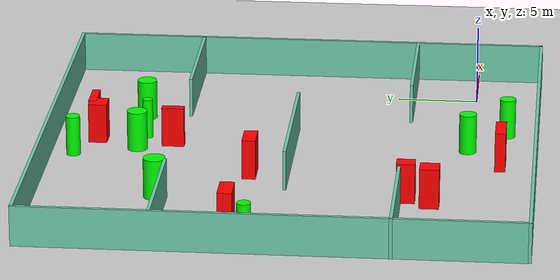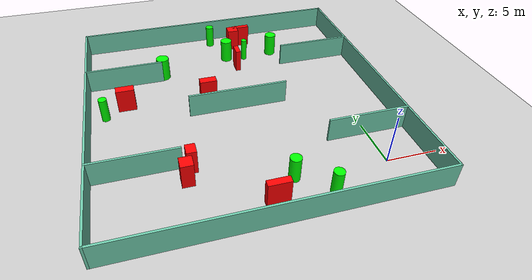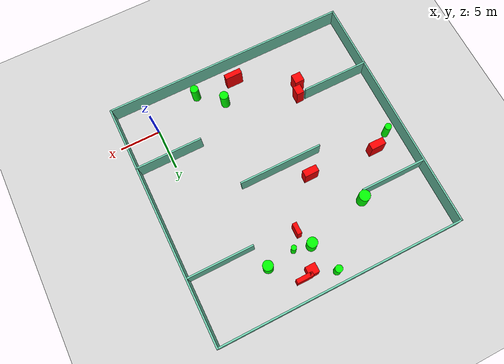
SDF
<sdf version="1.7">
 <world name="default">
  <light name="sun" type="directional">
   <pose>0 0 10 0 -0 0</pose>
   <diffuse>0.8 0.8 0.8 1</diffuse>
   <specular>0.2 0.2 0.2 1</specular>
   <attenuation>
    <range>1000</range>
    <constant>0.9</constant>
    <linear>0.01</linear>
    <quadratic>0.001</quadratic>
   </attenuation>
   <direction>-0.5 0.1 -0.9</direction>
   <spot><inner_angle>0</inner_angle><outer_angle>0</outer_angle><falloff>0</falloff></spot>
  </light>
  <model name="ground_plane">
   <static>1</static>
   <link name="link">
    <collision name="collision">
     <geometry><plane><normal>0 0 1</normal><size>100 100</size></plane></geometry>
     <surface>
      <contact><collide_bitmask>65535</collide_bitmask></contact>
      <friction><ode><mu>100</mu><mu2>50</mu2></ode></friction>
     </surface>
    </collision>
    <visual name="visual">
     <cast_shadows>0</cast_shadows>
     <geometry><plane><normal>0 0 1</normal><size>100 100</size></plane></geometry>
     <material>
      <script><uri>file://media/materials/scripts/gazebo.material</uri><name>Gazebo/Grey</name></script>
     </material>
    </visual>
   </link>
  </model>
  <gravity>0 0 -9.8</gravity>
  <magnetic_field>6e-06 2.3e-05 -4.2e-05</magnetic_field>
  <atmosphere type="adiabatic"/>
  <physics type="ode">
   <max_step_size>0.001</max_step_size>
   <real_time_factor>1</real_time_factor>
   <real_time_update_rate>1000</real_time_update_rate>
  </physics>
  <scene><ambient>0.4 0.4 0.4 1</ambient><background>0.7 0.7 0.7 1</background><shadows>1</shadows></scene>
  <spherical_coordinates>
   <surface_model>EARTH_WGS84</surface_model>
   <latitude_deg>0</latitude_deg>
   <longitude_deg>0</longitude_deg>
   <elevation>0</elevation>
   <heading_deg>0</heading_deg>
  </spherical_coordinates>
  <model name="my_base_walls">
   <link name="Wall_10">
    <collision name="Wall_10_Collision">
     <geometry><box><size>8.2 0.2 2.5</size></box></geometry>
     <pose>0 0 1.25 0 -0 0</pose>
    </collision>
    <visual name="Wall_10_Visual">
     <pose>0 0 1.25 0 -0 0</pose>
     <geometry><box><size>8.2 0.2 2.5</size></box></geometry>
     <material>
      <script><uri>file://media/materials/scripts/gazebo.material</uri><name>Gazebo/Grey</name></script>
      <ambient>0.435294 0.796078 0.67451 1</ambient>
     </material>
     <meta><layer>0</layer></meta>
    </visual>
    <pose>-11 -7 0 0 -0 0</pose>
   </link>
   <link name="Wall_12">
    <collision name="Wall_12_Collision">
     <geometry><box><size>8.2 0.2 2.5</size></box></geometry>
     <pose>0 0 1.25 0 -0 0</pose>
    </collision>
    <visual name="Wall_12_Visual">
     <pose>0 0 1.25 0 -0 0</pose>
     <geometry><box><size>8.2 0.2 2.5</size></box></geometry>
     <material>
      <script><uri>file://media/materials/scripts/gazebo.material</uri><name>Gazebo/Grey</name></script>
      <ambient>0.435294 0.796078 0.67451 1</ambient>
     </material>
     <meta><layer>0</layer></meta>
    </visual>
    <pose>-11 7 0 0 -0 0</pose>
   </link>
   <link name="Wall_14">
    <collision name="Wall_14_Collision">
     <geometry><box><size>8.2 0.2 2.5</size></box></geometry>
     <pose>0 0 1.25 0 -0 0</pose>
    </collision>
    <visual name="Wall_14_Visual">
     <pose>0 0 1.25 0 -0 0</pose>
     <geometry><box><size>8.2 0.2 2.5</size></box></geometry>
     <material>
      <script><uri>file://media/materials/scripts/gazebo.material</uri><name>Gazebo/Grey</name></script>
      <ambient>0.435294 0.796078 0.67451 1</ambient>
     </material>
     <meta><layer>0</layer></meta>
    </visual>
    <pose>11 7 0 0 -0 3.14159</pose>
   </link>
   <link name="Wall_16">
    <collision name="Wall_16_Collision">
     <geometry><box><size>10.2 0.2 2.5</size></box></geometry>
     <pose>0 0 1.25 0 -0 0</pose>
    </collision>
    <visual name="Wall_16_Visual">
     <pose>0 0 1.25 0 -0 0</pose>
     <geometry><box><size>10.2 0.2 2.5</size></box></geometry>
     <material>
      <script><uri>file://media/materials/scripts/gazebo.material</uri><name>Gazebo/Grey</name></script>
      <ambient>0.435294 0.796078 0.67451 1</ambient>
     </material>
     <meta><layer>0</layer></meta>
    </visual>
    <pose>0 0 0 0 -0 3.14159</pose>
   </link>
   <link name="Wall_2">
    <collision name="Wall_2_Collision">
     <geometry><box><size>30.2 0.2 2.5</size></box></geometry>
     <pose>0 0 1.25 0 -0 0</pose>
    </collision>
    <visual name="Wall_2_Visual">
     <pose>0 0 1.25 0 -0 0</pose>
     <geometry><box><size>30.2 0.2 2.5</size></box></geometry>
     <material>
      <script><uri>file://media/materials/scripts/gazebo.material</uri><name>Gazebo/Grey</name></script>
      <ambient>0.435294 0.796078 0.67451 1</ambient>
     </material>
     <meta><layer>0</layer></meta>
    </visual>
    <pose>0 -15 0 0 -0 3.14159</pose>
   </link>
   <link name="Wall_3">
    <collision name="Wall_3_Collision">
     <geometry><box><size>30.2 0.2 2.5</size></box></geometry>
     <pose>0 0 1.25 0 -0 0</pose>
    </collision>
    <visual name="Wall_3_Visual">
     <pose>0 0 1.25 0 -0 0</pose>
     <geometry><box><size>30.2 0.2 2.5</size></box></geometry>
     <material>
      <script><uri>file://media/materials/scripts/gazebo.material</uri><name>Gazebo/Grey</name></script>
      <ambient>0.435294 0.796078 0.67451 1</ambient>
     </material>
     <meta><layer>0</layer></meta>
    </visual>
    <pose>-15 0 0 0 -0 1.5708</pose>
   </link>
   <link name="Wall_4">
    <collision name="Wall_4_Collision">
     <geometry><box><size>30.2 0.2 2.5</size></box></geometry>
     <pose>0 0 1.25 0 -0 0</pose>
    </collision>
    <visual name="Wall_4_Visual">
     <pose>0 0 1.25 0 -0 0</pose>
     <geometry><box><size>30.2 0.2 2.5</size></box></geometry>
     <material>
      <script><uri>file://media/materials/scripts/gazebo.material</uri><name>Gazebo/Grey</name></script>
      <ambient>0.435294 0.796078 0.67451 1</ambient>
     </material>
     <meta><layer>0</layer></meta>
    </visual>
    <pose>0 15 0 0 -0 0</pose>
   </link>
   <link name="Wall_6">
    <collision name="Wall_6_Collision">
     <geometry><box><size>30.2 0.2 2.5</size></box></geometry>
     <pose>0 0 1.25 0 -0 0</pose>
    </collision>
    <visual name="Wall_6_Visual">
     <pose>0 0 1.25 0 -0 0</pose>
     <geometry><box><size>30.2 0.2 2.5</size></box></geometry>
     <material>
      <script><uri>file://media/materials/scripts/gazebo.material</uri><name>Gazebo/Grey</name></script>
      <ambient>0.435294 0.796078 0.67451 1</ambient>
     </material>
     <meta><layer>0</layer></meta>
    </visual>
    <pose>15 0 0 0 -0 1.5708</pose>
   </link>
   <link name="Wall_8">
    <collision name="Wall_8_Collision">
     <geometry><box><size>8.2 0.2 2.5</size></box></geometry>
     <pose>0 0 1.25 0 -0 0</pose>
    </collision>
    <visual name="Wall_8_Visual">
     <pose>0 0 1.25 0 -0 0</pose>
     <geometry><box><size>8.2 0.2 2.5</size></box></geometry>
     <material>
      <script><uri>file://media/materials/scripts/gazebo.material</uri><name>Gazebo/Grey</name></script>
      <ambient>0.435294 0.796078 0.67451 1</ambient>
     </material>
     <meta><layer>0</layer></meta>
    </visual>
    <pose>11 -7 0 0 -0 3.14159</pose>
   </link>
   <static>1</static>
   <pose>-11 11 0 0 -0 0</pose>
  </model>
  <model name="cylinder1">
   <static>1</static>
   <link name="link">
    <inertial>
     <mass>1</mass>
     <inertia><ixx>0.5</ixx><ixy>0</ixy><ixz>0</ixz><iyy>0.5</iyy><iyz>0</iyz><izz>1</izz></inertia>
    </inertial>
    <collision name="collision">
     <geometry><cylinder><radius>0.6264267439767776</radius><length>2.5</length></cylinder></geometry>
    </collision>
    <visual name="visual">
     <geometry><cylinder><radius>0.6264267439767776</radius><length>2.5</length></cylinder></geometry>
     <material>
      <ambient>0 1 0 1</ambient>
      <diffuse>0 1 0 1</diffuse>
      <specular>0.1 0.1 0.1 1</specular>
      <emissive>0 0 0 0</emissive>
     </material>
    </visual>
   </link>
   <pose>-9.993859818419953 20.683843405531192 1.25 0 0 0</pose>
  </model>
  <model name="cylinder2">
   <static>1</static>
   <link name="link">
    <inertial>
     <mass>1</mass>
     <inertia><ixx>0.5</ixx><ixy>0</ixy><ixz>0</ixz><iyy>0.5</iyy><iyz>0</iyz><izz>1</izz></inertia>
    </inertial>
    <collision name="collision">
     <geometry><cylinder><radius>0.5340578906488747</radius><length>2.5</length></cylinder></geometry>
    </collision>
    <visual name="visual">
     <geometry><cylinder><radius>0.5340578906488747</radius><length>2.5</length></cylinder></geometry>
     <material>
      <ambient>0 1 0 1</ambient>
      <diffuse>0 1 0 1</diffuse>
      <specular>0.1 0.1 0.1 1</specular>
      <emissive>0 0 0 0</emissive>
     </material>
    </visual>
   </link>
   <pose>-8.834787665289014 0.24220397590776344 1.25 0 0 0</pose>
  </model>
  <model name="cylinder3">
   <static>1</static>
   <link name="link">
    <inertial>
     <mass>1</mass>
     <inertia><ixx>0.5</ixx><ixy>0</ixy><ixz>0</ixz><iyy>0.5</iyy><iyz>0</iyz><izz>1</izz></inertia>
    </inertial>
    <collision name="collision">
     <geometry><cylinder><radius>0.678393254042908</radius><length>2.5</length></cylinder></geometry>
    </collision>
    <visual name="visual">
     <geometry><cylinder><radius>0.678393254042908</radius><length>2.5</length></cylinder></geometry>
     <material>
      <ambient>0 1 0 1</ambient>
      <diffuse>0 1 0 1</diffuse>
      <specular>0.1 0.1 0.1 1</specular>
      <emissive>0 0 0 0</emissive>
     </material>
    </visual>
   </link>
   <pose>-17.77595001995329 18.66484737098361 1.25 0 0 0</pose>
  </model>
  <model name="cylinder4">
   <static>1</static>
   <link name="link">
    <inertial>
     <mass>1</mass>
     <inertia><ixx>0.5</ixx><ixy>0</ixy><ixz>0</ixz><iyy>0.5</iyy><iyz>0</iyz><izz>1</izz></inertia>
    </inertial>
    <collision name="collision">
     <geometry><cylinder><radius>0.31437002147039256</radius><length>2.5</length></cylinder></geometry>
    </collision>
    <visual name="visual">
     <geometry><cylinder><radius>0.31437002147039256</radius><length>2.5</length></cylinder></geometry>
     <material>
      <ambient>0 1 0 1</ambient>
      <diffuse>0 1 0 1</diffuse>
      <specular>0.1 0.1 0.1 1</specular>
      <emissive>0 0 0 0</emissive>
     </material>
    </visual>
   </link>
   <pose>-7.919845149879604 20.277216872255185 1.25 0 0 0</pose>
  </model>
  <model name="cylinder5">
   <static>1</static>
   <link name="link">
    <inertial>
     <mass>1</mass>
     <inertia><ixx>0.5</ixx><ixy>0</ixy><ixz>0</ixz><iyy>0.5</iyy><iyz>0</iyz><izz>1</izz></inertia>
    </inertial>
    <collision name="collision">
     <geometry><cylinder><radius>0.6128259000851135</radius><length>2.5</length></cylinder></geometry>
    </collision>
    <visual name="visual">
     <geometry><cylinder><radius>0.6128259000851135</radius><length>2.5</length></cylinder></geometry>
     <material>
      <ambient>0 1 0 1</ambient>
      <diffuse>0 1 0 1</diffuse>
      <specular>0.1 0.1 0.1 1</specular>
      <emissive>0 0 0 0</emissive>
     </material>
    </visual>
   </link>
   <pose>-4.505818775321973 20.73290714536054 1.25 0 0 0</pose>
  </model>
  <model name="cylinder6">
   <static>1</static>
   <link name="link">
    <inertial>
     <mass>1</mass>
     <inertia><ixx>0.5</ixx><ixy>0</ixy><ixz>0</ixz><iyy>0.5</iyy><iyz>0</iyz><izz>1</izz></inertia>
    </inertial>
    <collision name="collision">
     <geometry><cylinder><radius>0.44116204761740674</radius><length>2.5</length></cylinder></geometry>
    </collision>
    <visual name="visual">
     <geometry><cylinder><radius>0.44116204761740674</radius><length>2.5</length></cylinder></geometry>
     <material>
      <ambient>0 1 0 1</ambient>
      <diffuse>0 1 0 1</diffuse>
      <specular>0.1 0.1 0.1 1</specular>
      <emissive>0 0 0 0</emissive>
     </material>
    </visual>
   </link>
   <pose>-11.228724454077533 24.517424381452024 1.25 0 0 0</pose>
  </model>
  <model name="cylinder7">
   <static>1</static>
   <link name="link">
    <inertial>
     <mass>1</mass>
     <inertia><ixx>0.5</ixx><ixy>0</ixy><ixz>0</ixz><iyy>0.5</iyy><iyz>0</iyz><izz>1</izz></inertia>
    </inertial>
    <collision name="collision">
     <geometry><cylinder><radius>0.4939081154420227</radius><length>2.5</length></cylinder></geometry>
    </collision>
    <visual name="visual">
     <geometry><cylinder><radius>0.4939081154420227</radius><length>2.5</length></cylinder></geometry>
     <material>
      <ambient>0 1 0 1</ambient>
      <diffuse>0 1 0 1</diffuse>
      <specular>0.1 0.1 0.1 1</specular>
      <emissive>0 0 0 0</emissive>
     </material>
    </visual>
   </link>
   <pose>-5.993115301267014 -2.1313413509609447 1.25 0 0 0</pose>
  </model>
  <model name="cylinder8">
   <static>1</static>
   <link name="link">
    <inertial>
     <mass>1</mass>
     <inertia><ixx>0.5</ixx><ixy>0</ixy><ixz>0</ixz><iyy>0.5</iyy><iyz>0</iyz><izz>1</izz></inertia>
    </inertial>
    <collision name="collision">
     <geometry><cylinder><radius>0.4151155794556103</radius><length>2.5</length></cylinder></geometry>
    </collision>
    <visual name="visual">
     <geometry><cylinder><radius>0.4151155794556103</radius><length>2.5</length></cylinder></geometry>
     <material>
      <ambient>0 1 0 1</ambient>
      <diffuse>0 1 0 1</diffuse>
      <specular>0.1 0.1 0.1 1</specular>
      <emissive>0 0 0 0</emissive>
     </material>
    </visual>
   </link>
   <pose>-24.370873335904367 12.637488430203142 1.25 0 0 0</pose>
  </model>
  <model name="box1">
   <static>1</static>
   <link name="link">
    <inertial>
     <mass>1</mass>
     <inertia><ixx>0.083</ixx><ixy>0</ixy><ixz>0</ixz><iyy>0.083</iyy><iyz>0</iyz><izz>0.083</izz></inertia>
    </inertial>
    <collision name="collision">
     <geometry><box><size>2.0990651891893912 0.6545709930387122 2.5</size></box></geometry>
    </collision>
    <visual name="visual">
     <geometry><box><size>2.0990651891893912 0.6545709930387122 2.5</size></box></geometry>
     <material>
      <ambient>1 0 0 1</ambient>
      <diffuse>1 0 0 1</diffuse>
      <specular>0.1 0.1 0.1 1</specular>
      <emissive>0 0 0 0</emissive>
     </material>
    </visual>
    <sensor name="my_contact" type="contact">
     <contact><collision>box_collision</collision><topic>__default_topic__</topic></contact>
    </sensor>
   </link>
   <pose>-11.019043527388273 -1.8475911540382852 1.25 0 0 0</pose>
  </model>
  <model name="box2">
   <static>1</static>
   <link name="link">
    <inertial>
     <mass>1</mass>
     <inertia><ixx>0.083</ixx><ixy>0</ixy><ixz>0</ixz><iyy>0.083</iyy><iyz>0</iyz><izz>0.083</izz></inertia>
    </inertial>
    <collision name="collision">
     <geometry><box><size>1.2277370201731188 1.144174658221944 2.5</size></box></geometry>
    </collision>
    <visual name="visual">
     <geometry><box><size>1.2277370201731188 1.144174658221944 2.5</size></box></geometry>
     <material>
      <ambient>1 0 0 1</ambient>
      <diffuse>1 0 0 1</diffuse>
      <specular>0.1 0.1 0.1 1</specular>
      <emissive>0 0 0 0</emissive>
     </material>
    </visual>
    <sensor name="my_contact" type="contact">
     <contact><collision>box_collision</collision><topic>__default_topic__</topic></contact>
    </sensor>
   </link>
   <pose>-8.61212039933192 23.27620643913793 1.25 0 0 0</pose>
  </model>
  <model name="box3">
   <static>1</static>
   <link name="link">
    <inertial>
     <mass>1</mass>
     <inertia><ixx>0.083</ixx><ixy>0</ixy><ixz>0</ixz><iyy>0.083</iyy><iyz>0</iyz><izz>0.083</izz></inertia>
    </inertial>
    <collision name="collision">
     <geometry><box><size>1.7391610072924366 0.835462930179465 2.5</size></box></geometry>
    </collision>
    <visual name="visual">
     <geometry><box><size>1.7391610072924366 0.835462930179465 2.5</size></box></geometry>
     <material>
      <ambient>1 0 0 1</ambient>
      <diffuse>1 0 0 1</diffuse>
      <specular>0.1 0.1 0.1 1</specular>
      <emissive>0 0 0 0</emissive>
     </material>
    </visual>
    <sensor name="my_contact" type="contact">
     <contact><collision>box_collision</collision><topic>__default_topic__</topic></contact>
    </sensor>
   </link>
   <pose>-13.684755214014466 13.312370446119793 1.25 0 0 0</pose>
  </model>
  <model name="box4">
   <static>1</static>
   <link name="link">
    <inertial>
     <mass>1</mass>
     <inertia><ixx>0.083</ixx><ixy>0</ixy><ixz>0</ixz><iyy>0.083</iyy><iyz>0</iyz><izz>0.083</izz></inertia>
    </inertial>
    <collision name="collision">
     <geometry><box><size>0.537510873834998 1.385528442446341 2.5</size></box></geometry>
    </collision>
    <visual name="visual">
     <geometry><box><size>0.537510873834998 1.385528442446341 2.5</size></box></geometry>
     <material>
      <ambient>1 0 0 1</ambient>
      <diffuse>1 0 0 1</diffuse>
      <specular>0.1 0.1 0.1 1</specular>
      <emissive>0 0 0 0</emissive>
     </material>
    </visual>
    <sensor name="my_contact" type="contact">
     <contact><collision>box_collision</collision><topic>__default_topic__</topic></contact>
    </sensor>
   </link>
   <pose>-9.217714212756073 18.534491384107856 1.25 0 0 0</pose>
  </model>
  <model name="box5">
   <static>1</static>
   <link name="link">
    <inertial>
     <mass>1</mass>
     <inertia><ixx>0.083</ixx><ixy>0</ixy><ixz>0</ixz><iyy>0.083</iyy><iyz>0</iyz><izz>0.083</izz></inertia>
    </inertial>
    <collision name="collision">
     <geometry><box><size>1.8300974426688477 0.8777037068395024 2.5</size></box></geometry>
    </collision>
    <visual name="visual">
     <geometry><box><size>1.8300974426688477 0.8777037068395024 2.5</size></box></geometry>
     <material>
      <ambient>1 0 0 1</ambient>
      <diffuse>1 0 0 1</diffuse>
      <specular>0.1 0.1 0.1 1</specular>
      <emissive>0 0 0 0</emissive>
     </material>
    </visual>
    <sensor name="my_contact" type="contact">
     <contact><collision>box_collision</collision><topic>__default_topic__</topic></contact>
    </sensor>
   </link>
   <pose>-22.164784324767307 13.901508845735261 1.25 0 0 0</pose>
  </model>
  <model name="box6">
   <static>1</static>
   <link name="link">
    <inertial>
     <mass>1</mass>
     <inertia><ixx>0.083</ixx><ixy>0</ixy><ixz>0</ixz><iyy>0.083</iyy><iyz>0</iyz><izz>0.083</izz></inertia>
    </inertial>
    <collision name="collision">
     <geometry><box><size>0.9350352421638599 1.130865103951471 2.5</size></box></geometry>
    </collision>
    <visual name="visual">
     <geometry><box><size>0.9350352421638599 1.130865103951471 2.5</size></box></geometry>
     <material>
      <ambient>1 0 0 1</ambient>
      <diffuse>1 0 0 1</diffuse>
      <specular>0.1 0.1 0.1 1</specular>
      <emissive>0 0 0 0</emissive>
     </material>
    </visual>
    <sensor name="my_contact" type="contact">
     <contact><collision>box_collision</collision><topic>__default_topic__</topic></contact>
    </sensor>
   </link>
   <pose>-17.1695023467188 3.6229002458445834 1.25 0 0 0</pose>
  </model>
  <model name="box7">
   <static>1</static>
   <link name="link">
    <inertial>
     <mass>1</mass>
     <inertia><ixx>0.083</ixx><ixy>0</ixy><ixz>0</ixz><iyy>0.083</iyy><iyz>0</iyz><izz>0.083</izz></inertia>
    </inertial>
    <collision name="collision">
     <geometry><box><size>1.1604945018749566 1.1842274581086105 2.5</size></box></geometry>
    </collision>
    <visual name="visual">
     <geometry><box><size>1.1604945018749566 1.1842274581086105 2.5</size></box></geometry>
     <material>
      <ambient>1 0 0 1</ambient>
      <diffuse>1 0 0 1</diffuse>
      <specular>0.1 0.1 0.1 1</specular>
      <emissive>0 0 0 0</emissive>
     </material>
    </visual>
    <sensor name="my_contact" type="contact">
     <contact><collision>box_collision</collision><topic>__default_topic__</topic></contact>
    </sensor>
   </link>
   <pose>-17.799442854508044 2.175022156827641 1.25 0 0 0</pose>
  </model>
  <model name="box8">
   <static>1</static>
   <link name="link">
    <inertial>
     <mass>1</mass>
     <inertia><ixx>0.083</ixx><ixy>0</ixy><ixz>0</ixz><iyy>0.083</iyy><iyz>0</iyz><izz>0.083</izz></inertia>
    </inertial>
    <collision name="collision">
     <geometry><box><size>1.9785599388434962 0.5048295103044912 2.5</size></box></geometry>
    </collision>
    <visual name="visual">
     <geometry><box><size>1.9785599388434962 0.5048295103044912 2.5</size></box></geometry>
     <material>
      <ambient>1 0 0 1</ambient>
      <diffuse>1 0 0 1</diffuse>
      <specular>0.1 0.1 0.1 1</specular>
      <emissive>0 0 0 0</emissive>
     </material>
    </visual>
    <sensor name="my_contact" type="contact">
     <contact><collision>box_collision</collision><topic>__default_topic__</topic></contact>
    </sensor>
   </link>
   <pose>-7.512446844474237 23.677415050087774 1.25 0 0 0</pose>
  </model>
 </world>
</sdf>
